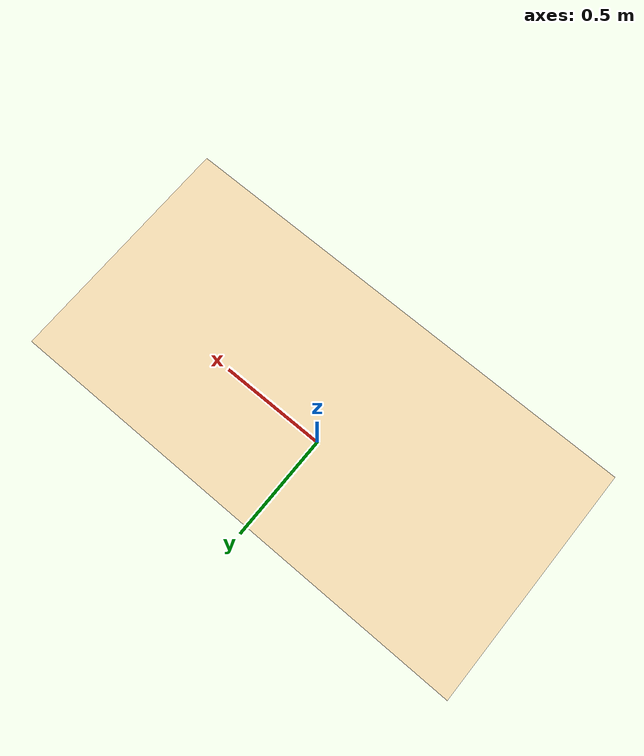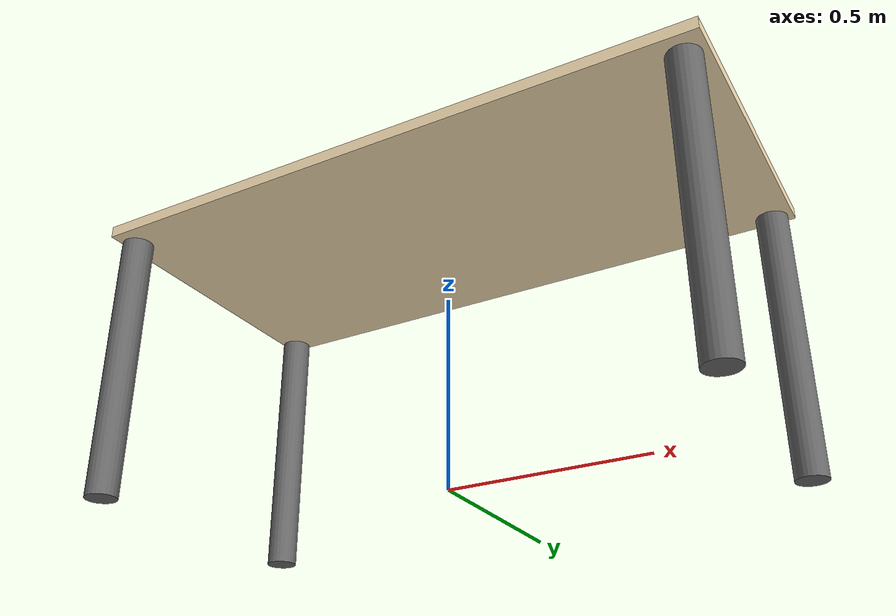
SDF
<?xml version="1.0" ?>
<sdf version="1.6">
  <model name="real_table">
    <static>true</static>
    <link name="link">
      <!-- Plateau de table -->
      <visual name="plateau">
        <pose>0 0 0.73 0 0 0</pose>
        <geometry><box><size>1.6 0.8 0.03</size></box></geometry>
        <material>
          <ambient>0.96 0.87 0.70 1</ambient>
          <diffuse>0.96 0.87 0.70 1</diffuse>
          <specular>0.1 0.1 0.1 1</specular>
        </material>
      </visual>

      <!-- Pieds élargis (visual uniquement) -->
      <visual name="p1">
        <pose>0.75 0.35 0.35 0 0 0</pose>
        <geometry><cylinder><radius>0.04</radius><length>0.7</length></cylinder></geometry>
        <material><ambient>0.4 0.4 0.4 1</ambient><diffuse>0.4 0.4 0.4 1</diffuse></material>
      </visual>
      <visual name="p2">
        <pose>0.75 -0.35 0.35 0 0 0</pose>
        <geometry><cylinder><radius>0.04</radius><length>0.7</length></cylinder></geometry>
        <material><ambient>0.4 0.4 0.4 1</ambient><diffuse>0.4 0.4 0.4 1</diffuse></material>
      </visual>
      <visual name="p3">
        <pose>-0.75 0.35 0.35 0 0 0</pose>
        <geometry><cylinder><radius>0.04</radius><length>0.7</length></cylinder></geometry>
        <material><ambient>0.4 0.4 0.4 1</ambient><diffuse>0.4 0.4 0.4 1</diffuse></material>
      </visual>
      <visual name="p4">
        <pose>-0.75 -0.35 0.35 0 0 0</pose>
        <geometry><cylinder><radius>0.04</radius><length>0.7</length></cylinder></geometry>
        <material><ambient>0.4 0.4 0.4 1</ambient><diffuse>0.4 0.4 0.4 1</diffuse></material>
      </visual>

      <!-- COLLISION UNIQUEMENT sur le plateau (pas de collision sur les pieds) -->
      <!-- Cela permet au robot de passer sous la table sans être bloqué par les pieds -->
      <collision name="collision_top">
        <pose>0 0 0.73 0 0 0</pose>
        <geometry><box><size>1.6 0.8 0.05</size></box></geometry>
      </collision>

      <!-- Option 2 : Si vous voulez que les pieds aient aussi des collisions (robot ne passe pas entre) -->
      <!-- Décommentez les lignes suivantes pour activer les collisions sur les pieds -->
    </link>
  </model>
</sdf>
